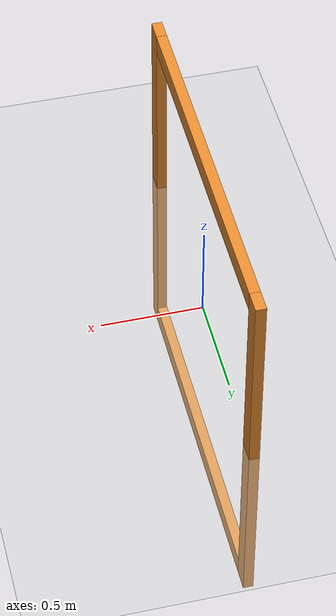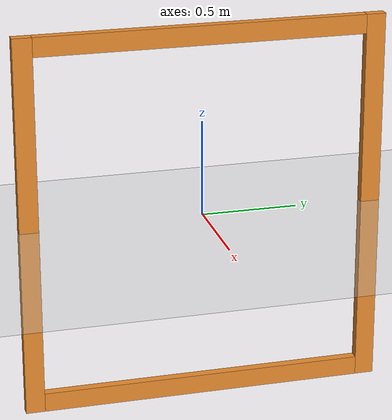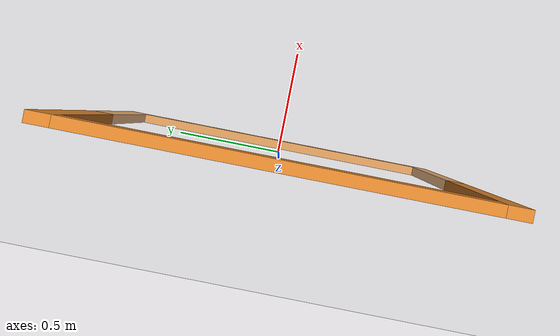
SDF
<sdf version="1.4">
 <world name="smart_drone_simple_world">
  <include><uri>model://ground_plane</uri></include>
  <include><uri>model://sun</uri></include>
  <model name="smart_drone_orange_gate4">
   <link name="left">
    <pose>0 -0.9 0 0 -0 0</pose>
    <inertial>
     <mass>1</mass>
     <inertia>
      <ixx>0.166667</ixx>
      <ixy>0</ixy>
      <ixz>0</ixz>
      <iyy>0.166667</iyy>
      <iyz>0</iyz>
      <izz>0.166667</izz>
     </inertia>
     <pose>0 -0.9 0 0 -0 0</pose>
    </inertial>
    <visual name="visual">
     <geometry><box><size>0.05 0.1 2</size></box></geometry>
     <material>
      <lighting>1</lighting>
      <script><uri>file://media/materials/scripts/gazebo.material</uri><name>Gazebo/Grey</name></script>
      <shader type="pixel"><normal_map>__default__</normal_map></shader>
      <ambient>0.9 0.54 0.18 1</ambient>
      <diffuse>0.9 0.54 0.18 1</diffuse>
      <specular>0.9 0.54 0.18 1</specular>
      <emissive>0 0 0 1</emissive>
     </material>
    </visual>
    <collision name="collision">
     <geometry><box><size>0.05 0.1 2</size></box></geometry>
     <surface>
      <friction>
       <ode><mu>1</mu><mu2>1</mu2><fdir1>0 0 0</fdir1><slip1>0</slip1><slip2>0</slip2></ode>
       <torsional>
        <coefficient>1</coefficient>
        <patch_radius>0</patch_radius>
        <surface_radius>0</surface_radius>
        <use_patch_radius>1</use_patch_radius>
        <ode><slip>0</slip></ode>
       </torsional>
      </friction>
      <bounce><restitution_coefficient>0</restitution_coefficient><threshold>1e+06</threshold></bounce>
      <contact>
       <collide_without_contact>0</collide_without_contact>
       <collide_without_contact_bitmask>1</collide_without_contact_bitmask>
       <collide_bitmask>1</collide_bitmask>
       <ode>
        <soft_cfm>0</soft_cfm>
        <soft_erp>0.2</soft_erp>
        <kp>1e+13</kp>
        <kd>1</kd>
        <max_vel>0.01</max_vel>
        <min_depth>0</min_depth>
       </ode>
       <bullet>
        <split_impulse>1</split_impulse>
        <split_impulse_penetration_threshold>-0.01</split_impulse_penetration_threshold>
        <soft_cfm>0</soft_cfm>
        <soft_erp>0.2</soft_erp>
        <kp>1e+13</kp>
        <kd>1</kd>
       </bullet>
      </contact>
     </surface>
    </collision>
   </link>
   <link name="top">
    <pose>0 0 0.95 0 -0 0</pose>
    <inertial>
     <mass>1</mass>
     <inertia>
      <ixx>0.166667</ixx>
      <ixy>0</ixy>
      <ixz>0</ixz>
      <iyy>0.166667</iyy>
      <iyz>0</iyz>
      <izz>0.166667</izz>
     </inertia>
     <pose>0 0 0.95 0 -0 0</pose>
    </inertial>
    <visual name="visual">
     <geometry><box><size>0.05 1.7 0.1</size></box></geometry>
     <material>
      <lighting>1</lighting>
      <script><uri>file://media/materials/scripts/gazebo.material</uri><name>Gazebo/Grey</name></script>
      <shader type="pixel"><normal_map>__default__</normal_map></shader>
      <ambient>0.9 0.54 0.18 1</ambient>
      <diffuse>0.9 0.54 0.18 1</diffuse>
      <specular>0.9 0.54 0.18 1</specular>
      <emissive>0 0 0 1</emissive>
     </material>
    </visual>
    <collision name="collision">
     <geometry><box><size>0.05 1.7 0.1</size></box></geometry>
     <surface>
      <friction>
       <ode><mu>1</mu><mu2>1</mu2><fdir1>0 0 0</fdir1><slip1>0</slip1><slip2>0</slip2></ode>
       <torsional>
        <coefficient>1</coefficient>
        <patch_radius>0</patch_radius>
        <surface_radius>0</surface_radius>
        <use_patch_radius>1</use_patch_radius>
        <ode><slip>0</slip></ode>
       </torsional>
      </friction>
      <bounce><restitution_coefficient>0</restitution_coefficient><threshold>1e+06</threshold></bounce>
      <contact>
       <collide_without_contact>0</collide_without_contact>
       <collide_without_contact_bitmask>1</collide_without_contact_bitmask>
       <collide_bitmask>1</collide_bitmask>
       <ode>
        <soft_cfm>0</soft_cfm>
        <soft_erp>0.2</soft_erp>
        <kp>1e+13</kp>
        <kd>1</kd>
        <max_vel>0.01</max_vel>
        <min_depth>0</min_depth>
       </ode>
       <bullet>
        <split_impulse>1</split_impulse>
        <split_impulse_penetration_threshold>-0.01</split_impulse_penetration_threshold>
        <soft_cfm>0</soft_cfm>
        <soft_erp>0.2</soft_erp>
        <kp>1e+13</kp>
        <kd>1</kd>
       </bullet>
      </contact>
     </surface>
    </collision>
   </link>
   <link name="bot">
    <pose>0 0 -0.95 0 -0 0</pose>
    <inertial>
     <mass>1</mass>
     <inertia>
      <ixx>0.166667</ixx>
      <ixy>0</ixy>
      <ixz>0</ixz>
      <iyy>0.166667</iyy>
      <iyz>0</iyz>
      <izz>0.166667</izz>
     </inertia>
     <pose>0 0 -0.95 0 -0 0</pose>
    </inertial>
    <visual name="visual">
     <geometry><box><size>0.05 1.7 0.1</size></box></geometry>
     <material>
      <lighting>1</lighting>
      <script><uri>file://media/materials/scripts/gazebo.material</uri><name>Gazebo/Grey</name></script>
      <shader type="pixel"><normal_map>__default__</normal_map></shader>
      <ambient>0.9 0.54 0.18 1</ambient>
      <diffuse>0.9 0.54 0.18 1</diffuse>
      <specular>0.9 0.54 0.18 1</specular>
      <emissive>0 0 0 1</emissive>
     </material>
    </visual>
    <collision name="collision">
     <geometry><box><size>0.05 1.7 0.1</size></box></geometry>
     <surface>
      <friction>
       <ode><mu>1</mu><mu2>1</mu2><fdir1>0 0 0</fdir1><slip1>0</slip1><slip2>0</slip2></ode>
       <torsional>
        <coefficient>1</coefficient>
        <patch_radius>0</patch_radius>
        <surface_radius>0</surface_radius>
        <use_patch_radius>1</use_patch_radius>
        <ode><slip>0</slip></ode>
       </torsional>
      </friction>
      <bounce><restitution_coefficient>0</restitution_coefficient><threshold>1e+06</threshold></bounce>
      <contact>
       <collide_without_contact>0</collide_without_contact>
       <collide_without_contact_bitmask>1</collide_without_contact_bitmask>
       <collide_bitmask>1</collide_bitmask>
       <ode>
        <soft_cfm>0</soft_cfm>
        <soft_erp>0.2</soft_erp>
        <kp>1e+13</kp>
        <kd>1</kd>
        <max_vel>0.01</max_vel>
        <min_depth>0</min_depth>
       </ode>
       <bullet>
        <split_impulse>1</split_impulse>
        <split_impulse_penetration_threshold>-0.01</split_impulse_penetration_threshold>
        <soft_cfm>0</soft_cfm>
        <soft_erp>0.2</soft_erp>
        <kp>1e+13</kp>
        <kd>1</kd>
       </bullet>
      </contact>
     </surface>
    </collision>
   </link>
   <link name="right">
    <pose>0 0.9 0 0 -0 0</pose>
    <inertial>
     <mass>1</mass>
     <inertia>
      <ixx>0.166667</ixx>
      <ixy>0</ixy>
      <ixz>0</ixz>
      <iyy>0.166667</iyy>
      <iyz>0</iyz>
      <izz>0.166667</izz>
     </inertia>
     <pose>0 0.9 0 0 -0 0</pose>
    </inertial>
    <visual name="visual">
     <geometry><box><size>0.05 0.1 2</size></box></geometry>
     <material>
      <lighting>1</lighting>
      <script><uri>file://media/materials/scripts/gazebo.material</uri><name>Gazebo/Grey</name></script>
      <shader type="pixel"><normal_map>__default__</normal_map></shader>
      <ambient>0.9 0.54 0.18 1</ambient>
      <diffuse>0.9 0.54 0.18 1</diffuse>
      <specular>0.9 0.54 0.18 1</specular>
      <emissive>0 0 0 1</emissive>
     </material>
    </visual>
    <collision name="collision">
     <geometry><box><size>0.05 0.1 2</size></box></geometry>
     <surface>
      <friction>
       <ode><mu>1</mu><mu2>1</mu2><fdir1>0 0 0</fdir1><slip1>0</slip1><slip2>0</slip2></ode>
       <torsional>
        <coefficient>1</coefficient>
        <patch_radius>0</patch_radius>
        <surface_radius>0</surface_radius>
        <use_patch_radius>1</use_patch_radius>
        <ode><slip>0</slip></ode>
       </torsional>
      </friction>
      <bounce><restitution_coefficient>0</restitution_coefficient><threshold>1e+06</threshold></bounce>
      <contact>
       <collide_without_contact>0</collide_without_contact>
       <collide_without_contact_bitmask>1</collide_without_contact_bitmask>
       <collide_bitmask>1</collide_bitmask>
       <ode>
        <soft_cfm>0</soft_cfm>
        <soft_erp>0.2</soft_erp>
        <kp>1e+13</kp>
        <kd>1</kd>
        <max_vel>0.01</max_vel>
        <min_depth>0</min_depth>
       </ode>
       <bullet>
        <split_impulse>1</split_impulse>
        <split_impulse_penetration_threshold>-0.01</split_impulse_penetration_threshold>
        <soft_cfm>0</soft_cfm>
        <soft_erp>0.2</soft_erp>
        <kp>1e+13</kp>
        <kd>1</kd>
       </bullet>
      </contact>
     </surface>
    </collision>
   </link>
   <static>1</static>
  </model>
 </world>
</sdf>
